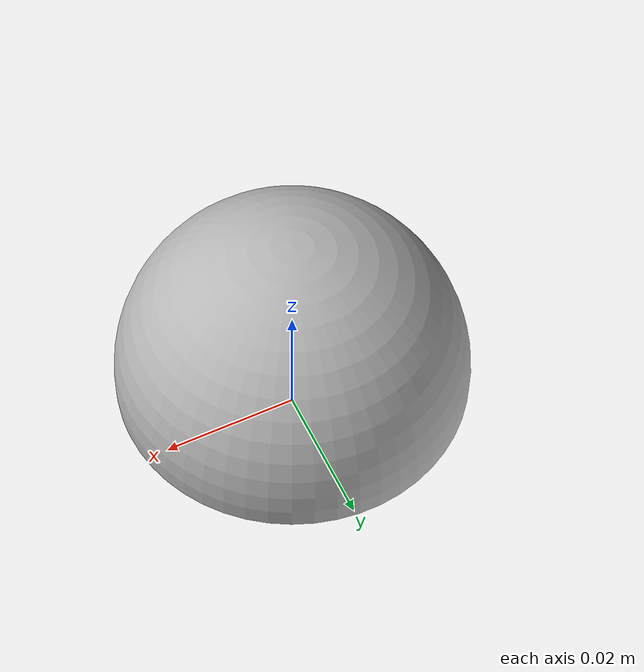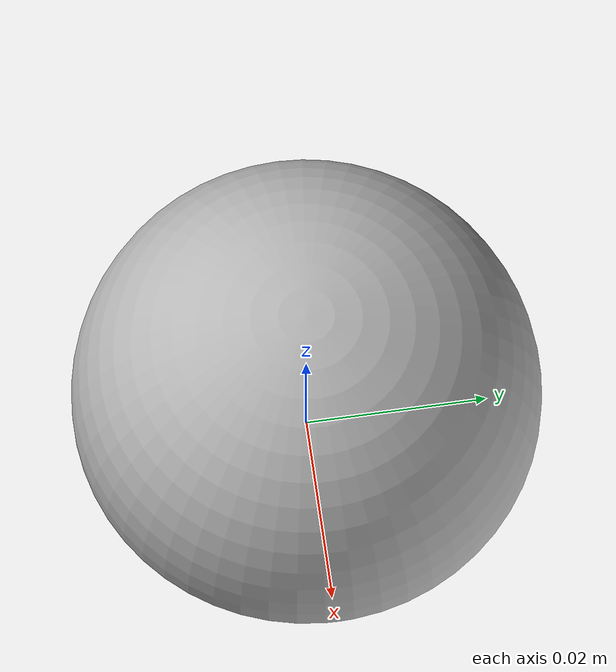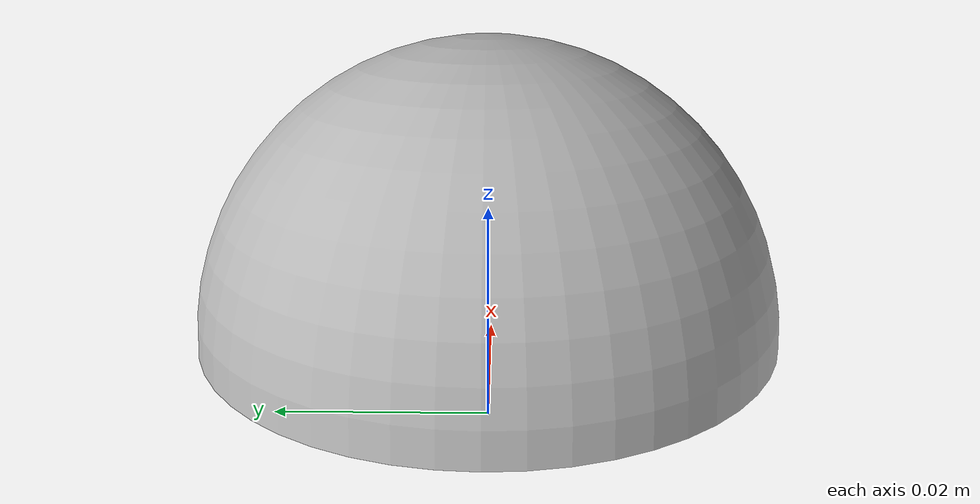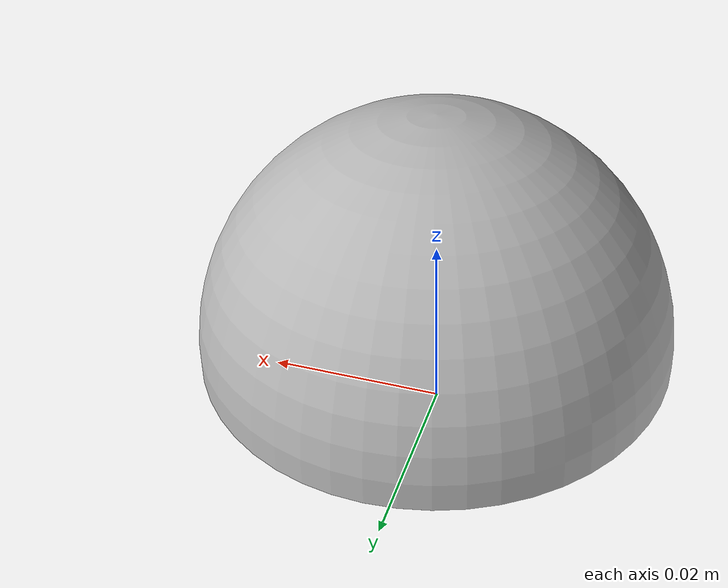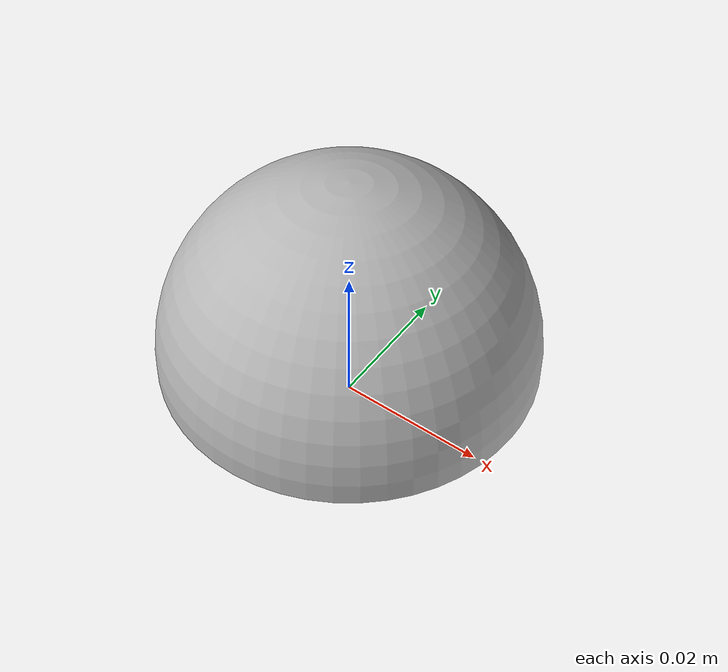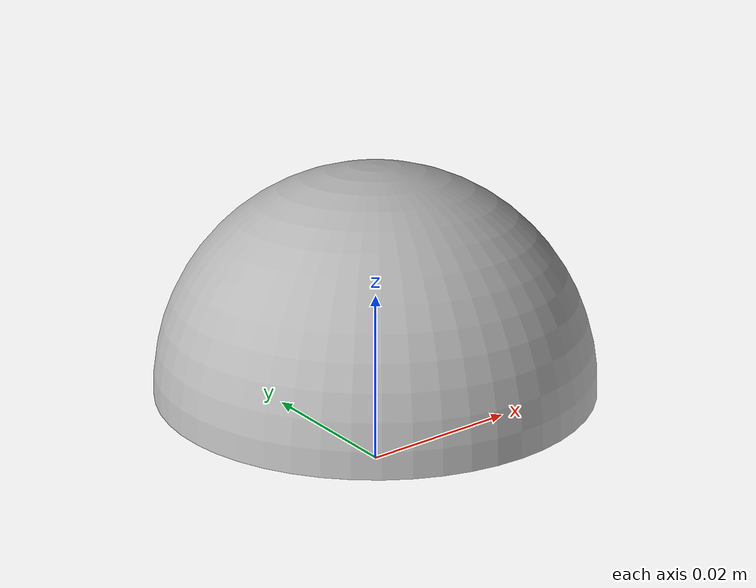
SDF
<sdf version='1.6'>
  <model name='he_phere'>
    <link name='object (7)'>
      <pose frame=''>0 0 0.01 0 0 0</pose>
      <inertial>
        <pose frame=''>0 0 0.009375 0 -0 0</pose>
        <mass>0.0032725</mass>
        <inertia>
          <ixx>5.30502e-06</ixx>
          <ixy>-9.19283e-39</ixy>
          <ixz>1.50135e-22</ixz>
          <iyy>5.30502e-06</iyy>
          <iyz>1.76111e-22</iyz>
          <izz>8.18123e-06</izz>
        </inertia>
      </inertial>
      <collision name='object_collision'>
        <pose frame=''>0 0 0 1.5708 -0 0</pose>
        <geometry>
          <mesh>
            <scale>1 1 1</scale>
            <uri>model://he_phere/untitled.dae</uri>
          </mesh>
        </geometry>
        <surface>
          <friction>
            <ode>
              <mu>2.0</mu>
              <mu2>2.0</mu2>
            </ode>
          </friction>
          <contact>
            <ode>
              <kp>100000.0</kp>
              <kd>1.0</kd>
              <min_depth>0.0000001</min_depth>
              <max_vel>0.1</max_vel>
            </ode>
          </contact>
        </surface>
      </collision>
      <visual name='object_visual'>
        <pose frame=''>0 0 0 1.5708 -0 0</pose>
        <geometry>
          <mesh>
            <scale>1 1 1</scale>
            <uri>model://he_phere/untitled.dae</uri>
          </mesh>
        </geometry>
      </visual>
    </link>
  </model>
</sdf>
